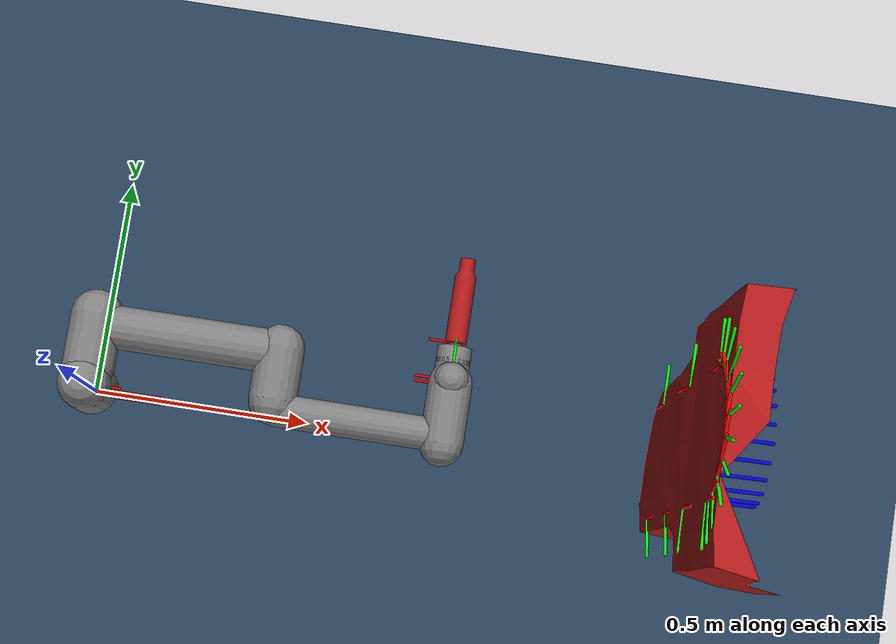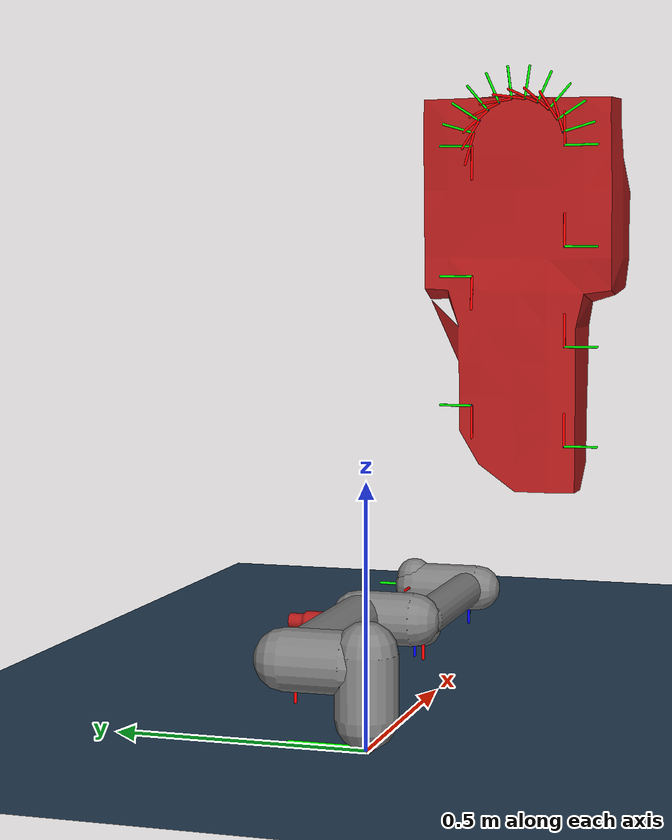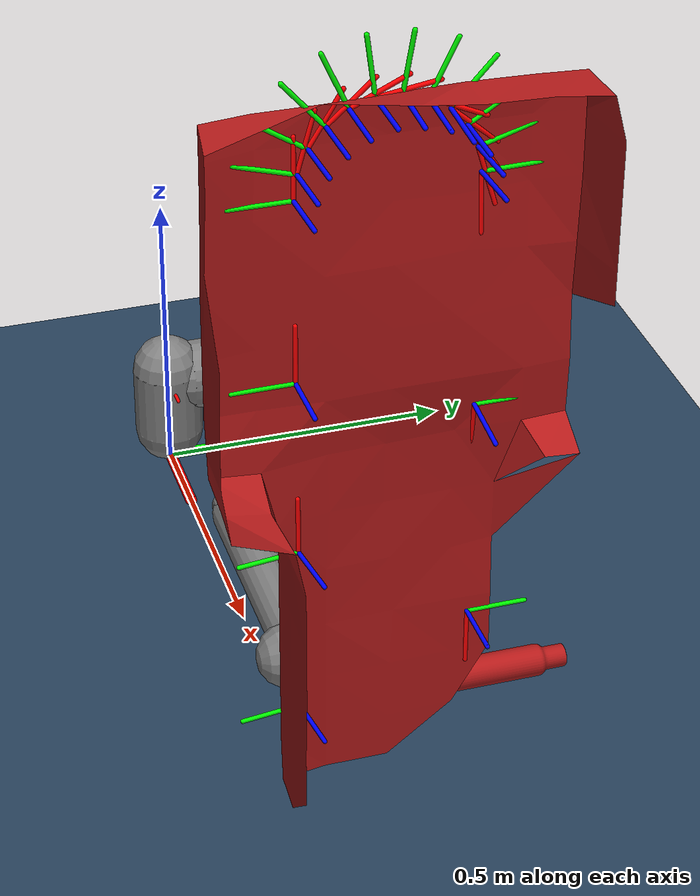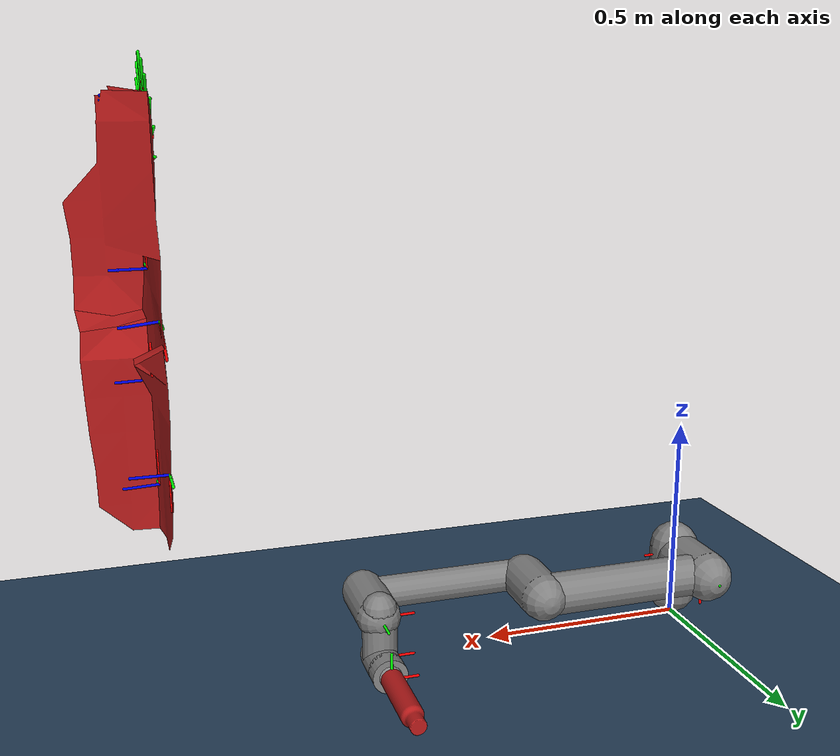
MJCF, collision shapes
<mujoco model="ur5e scene">
  <compiler angle="radian" meshdir="ur5e/assets" autolimits="true"/>
  <statistic center="0.3 0 0.4" extent="0.8"/>

  <visual>
    <headlight diffuse="0.6 0.6 0.6" ambient="0.1 0.1 0.1" specular="0 0 0"/>
    <rgba haze="0.15 0.25 0.35 1"/>
    <global azimuth="120" elevation="-20"/>
  </visual>

  <asset>
    <texture type="skybox" builtin="gradient" rgb1="0.3 0.5 0.7" rgb2="0 0 0" width="512" height="3072"/>
    <texture type="2d" name="groundplane" builtin="checker" mark="edge" rgb1="0.2 0.3 0.4" rgb2="0.1 0.2 0.3" markrgb="0.8 0.8 0.8" width="300" height="300"/>
    <material name="groundplane" texture="groundplane" texuniform="true" texrepeat="5 5" reflectance="0.2"/>
  <material class="ur5e" name="black" rgba="0.033 0.033 0.033 1"/>
    <material class="ur5e" name="jointgray" rgba="0.278 0.278 0.278 1"/>
    <material class="ur5e" name="linkgray" rgba="0.82 0.82 0.82 1"/>
    <material class="ur5e" name="urblue" rgba="0.49 0.678 0.8 1"/>

    <mesh file="base_0.obj"/>
    <mesh file="base_1.obj"/>
    <mesh file="shoulder_0.obj"/>
    <mesh file="shoulder_1.obj"/>
    <mesh file="shoulder_2.obj"/>
    <mesh file="upperarm_0.obj"/>
    <mesh file="upperarm_1.obj"/>
    <mesh file="upperarm_2.obj"/>
    <mesh file="upperarm_3.obj"/>
    <mesh file="forearm_0.obj"/>
    <mesh file="forearm_1.obj"/>
    <mesh file="forearm_2.obj"/>
    <mesh file="forearm_3.obj"/>
    <mesh file="wrist1_0.obj"/>
    <mesh file="wrist1_1.obj"/>
    <mesh file="wrist1_2.obj"/>
    <mesh file="wrist2_0.obj"/>
    <mesh file="wrist2_1.obj"/>
    <mesh file="wrist2_2.obj"/>
    <mesh file="wrist3.obj"/>
  <mesh name="tool_mesh" file="painting_gun.obj"/>
    <mesh name="painting_gun_collision_mesh" file="painting_gun.obj"/>
  <mesh name="reconstructed_mesh" file="reconstructed.obj"/>
    <mesh name="reconstructed_collision_mesh" file="reconstructed.obj"/>
  </asset>

  <worldbody>
    <light pos="0 0 1.5" dir="0 0 -1" directional="true"/>
    <geom name="floor" size="0 0 0.05" type="plane" pos="0.0 0.0 0.0" material="groundplane"/>
    <!-- Definition of the world frame -->
    <body name="world_frame" pos="0.0 0.0 0.0">
        <geom name="world_x_axis" type="capsule" fromto="0 0 0 0.15 0 0" size="0.01" rgba="1 0 0 1" contype="0" conaffinity="0"/>
        <geom name="world_y_axis" type="capsule" fromto="0 0 0 0 0.15 0" size="0.01" rgba="0 1 0 1" contype="0" conaffinity="0"/>
        <geom name="world_z_axis" type="capsule" fromto="0 0 0 0 0 0.15" size="0.01" rgba="0 0 1 1" contype="0" conaffinity="0"/>
    </body>

    <!-- Optimization search space -->

  <light name="spotlight" mode="targetbodycom" target="wrist_2_link" pos="0 -1 2"/>

    <body name="base" pos="0 0 0.0" quat="1 0 0 0" childclass="ur5e">
      <inertial mass="4.0" pos="0 0 0" diaginertia="0.00443333156 0.00443333156 0.0072"/>
      <geom type="capsule" fromto="0 0 0 0.08 0 0" rgba="1 0 0 1" size="0.003" contype="0" conaffinity="0"/>
      <geom type="capsule" fromto="0 0 0 0 0.08 0" rgba="0 1 0 1" size="0.003" contype="0" conaffinity="0"/>
      <geom type="capsule" fromto="0 0 0 0 0 0.08" rgba="0 0 1 1" size="0.003" contype="0" conaffinity="0"/>
      <geom mesh="base_0" material="black" class="visual"/>
      <geom mesh="base_1" material="jointgray" class="visual"/>

      <!-- COM marker -->
      <geom name="base_com" type="sphere" pos="0.0 0.0 0.0" size="0.01" rgba="1 0 0 1" group="1" contype="0" conaffinity="0"/>

      <body name="shoulder_link" pos="0 0 0.163">
        <inertial mass="3.761" pos="0 0.00193 -0.02561" diaginertia="0.0067 0.0064 0.00666"/>
        <geom type="capsule" fromto="0 0 0 0.08 0 0" rgba="1 0 0 1" size="0.003" contype="0" conaffinity="0"/>
        <geom type="capsule" fromto="0 0 0 0 0.08 0" rgba="0 1 0 1" size="0.003" contype="0" conaffinity="0"/>
        <geom type="capsule" fromto="0 0 0 0 0 0.08" rgba="0 0 1 1" size="0.003" contype="0" conaffinity="0"/>
        <joint name="shoulder_pan_joint" class="size3" axis="0 0 1"/>
        <geom mesh="shoulder_0" material="urblue" class="visual"/>
        <geom mesh="shoulder_1" material="black" class="visual"/>
        <geom mesh="shoulder_2" material="jointgray" class="visual"/>
        <geom name="shoulder_collision" class="collision" size="0.06 0.06" pos="0 0 -0.04"/>

        <!-- COM marker -->
        <geom name="shoulder_link_com" type="sphere" pos="0.0 0.00193 -0.02561" size="0.01" rgba="1 0 0 1" group="1" contype="0" conaffinity="0"/>

        <body name="upper_arm_link" pos="0 0.138 0" quat="1 0 1 0">
          <inertial mass="8.058" pos="0.0 -0.01464 0.2125" diaginertia="0.0149 0.3564 0.3553"/>
          <geom type="capsule" fromto="0 0 0 0.08 0 0" rgba="1 0 0 1" size="0.003" contype="0" conaffinity="0"/>
          <geom type="capsule" fromto="0 0 0 0 0.08 0" rgba="0 1 0 1" size="0.003" contype="0" conaffinity="0"/>
          <geom type="capsule" fromto="0 0 0 0 0 0.08" rgba="0 0 1 1" size="0.003" contype="0" conaffinity="0"/>
          <joint name="shoulder_lift_joint" class="size3"/>
          <geom mesh="upperarm_0" material="linkgray" class="visual"/>
          <geom mesh="upperarm_1" material="black" class="visual"/>
          <geom mesh="upperarm_2" material="jointgray" class="visual"/>
          <geom mesh="upperarm_3" material="urblue" class="visual"/>
          <geom name="upper_arm_collision_outer" class="collision" pos="0 -0.04 0" quat="1 1 0 0" size="0.06 0.06"/>
          <geom name="upper_arm_collision_inner" class="collision" size="0.05 0.2" pos="0 0 0.2"/>

          <!-- COM marker -->
          <geom name="upper_arm_com" type="sphere" pos="0.0 -0.01464 0.2125" size="0.01" rgba="1 0 0 1" group="1" contype="0" conaffinity="0"/>

          <body name="forearm_link" pos="0 -0.131 0.425">
            <inertial mass="2.846" pos="0.0 0.0155 0.1922" diaginertia="0.0025 0.0551 0.0546"/>
            <geom type="capsule" fromto="0 0 0 0.08 0 0" rgba="1 0 0 1" size="0.003" contype="0" conaffinity="0"/>
            <geom type="capsule" fromto="0 0 0 0 0.08 0" rgba="0 1 0 1" size="0.003" contype="0" conaffinity="0"/>
            <geom type="capsule" fromto="0 0 0 0 0 0.08" rgba="0 0 1 1" size="0.003" contype="0" conaffinity="0"/>
            <joint name="elbow_joint" class="size3_limited"/>
            <geom mesh="forearm_0" material="urblue" class="visual"/>
            <geom mesh="forearm_1" material="linkgray" class="visual"/>
            <geom mesh="forearm_2" material="black" class="visual"/>
            <geom mesh="forearm_3" material="jointgray" class="visual"/>
            <geom name="forearm_collision_outer" class="collision" pos="0 0.08 0" quat="1 1 0 0" size="0.055 0.06"/>
            <geom name="forearm_collision_inner" class="collision" size="0.038 0.19" pos="0 0 0.2"/>

            <!-- COM marker -->
            <geom name="forearm_com" type="sphere" pos="0.0 0.0155 0.1922" size="0.01" rgba="1 0 0 1" group="1" contype="0" conaffinity="0"/>

            <body name="wrist_1_link" pos="0 0 0.392" quat="1 0 1 0">
              <inertial mass="1.37" pos="0.0 0.11 0.03" diaginertia="0.0012 0.0012 0.0009"/>
              <geom type="capsule" fromto="0 0 0 0.08 0 0" rgba="1 0 0 1" size="0.003" contype="0" conaffinity="0"/>
              <geom type="capsule" fromto="0 0 0 0 0.08 0" rgba="0 1 0 1" size="0.003" contype="0" conaffinity="0"/>
              <geom type="capsule" fromto="0 0 0 0 0 0.08" rgba="0 0 1 1" size="0.003" contype="0" conaffinity="0"/>
              <joint name="wrist_1_joint" class="size1"/>
              <geom mesh="wrist1_0" material="black" class="visual"/>
              <geom mesh="wrist1_1" material="urblue" class="visual"/>
              <geom mesh="wrist1_2" material="jointgray" class="visual"/>
              <geom name="wrist_1_collision" class="collision" pos="0 0.05 0" quat="1 1 0 0" size="0.05 0.07"/>

              <!-- COM marker -->
              <geom name="wrist_1_com" type="sphere" pos="0.0 0.11 0.03" size="0.01" rgba="1 0 0 1" group="1" contype="0" conaffinity="0"/>

              <body name="wrist_2_link" pos="0 0.127 0">
                <inertial mass="1.3" pos="0.0 0.02 0.09" diaginertia="0.0012 0.0012 0.0009"/>
                <geom type="capsule" fromto="0 0 0 0.08 0 0" rgba="1 0 0 1" size="0.003" contype="0" conaffinity="0"/>
                <geom type="capsule" fromto="0 0 0 0 0.08 0" rgba="0 1 0 1" size="0.003" contype="0" conaffinity="0"/>
                <geom type="capsule" fromto="0 0 0 0 0 0.08" rgba="0 0 1 1" size="0.003" contype="0" conaffinity="0"/>
                <joint name="wrist_2_joint" axis="0 0 1" class="size1"/>
                <geom mesh="wrist2_0" material="black" class="visual"/>
                <geom mesh="wrist2_1" material="urblue" class="visual"/>
                <geom mesh="wrist2_2" material="jointgray" class="visual"/>
                <geom name="wrist_2_collision_lower" class="collision" size="0.04 0.06" pos="0 0 0.04"/>
                <geom name="wrist_2_collision_upper" class="collision" pos="0 0.02 0.1" quat="1 1 0 0" size="0.04 0.04"/>

                <!-- COM marker -->
                <geom name="wrist_2_com" type="sphere" pos="0.0 0.02 0.09" size="0.01" rgba="1 0 0 1" group="1" contype="0" conaffinity="0"/>

                <body name="wrist_3_link" pos="0 0 0.1">
                  <inertial mass="0.365" pos="0.0 0.07 0.0" quat="1 0 0 1" diaginertia="0.001 0.001 0.001"/>
                  <geom type="capsule" fromto="0 0 0 0.08 0 0" rgba="1 0 0 1" size="0.003" contype="0" conaffinity="0"/>
                  <geom type="capsule" fromto="0 0 0 0 0.08 0" rgba="0 1 0 1" size="0.003" contype="0" conaffinity="0"/>
                  <geom type="capsule" fromto="0 0 0 0 0 0.08" rgba="0 0 1 1" size="0.003" contype="0" conaffinity="0"/>
                  <joint name="wrist_3_joint" class="size1"/>
                  <geom material="linkgray" mesh="wrist3" class="visual"/>
                  <geom name="wrist_3_collision" class="eef_collision" pos="0 0.07 0" quat="1 1 0 0" size="0.04 0.02"/>

                  <!-- COM marker -->
                  <geom name="wrist_3_com" type="sphere" pos="0.0 0.07 0.0" size="0.01" rgba="1 0 0 1" group="1" contype="0" conaffinity="0"/>

                  <site name="ee_site" pos="0 0.1 0" quat="0.7071 -0.7071 0 0"/>

                  <!-- Replace tool frames with Hande gripper -->
                  <body name="ee_frame_visual_only" pos="0 0.1 0" quat="0.7071 -0.7071 0 0">
                    <geom type="capsule" fromto="0 0 0 0.05 0 0" rgba="1 0 0 1" size="0.002"/>
                    <geom type="capsule" fromto="0 0 0 0 0.05 0" rgba="0 1 0 1" size="0.002"/>
                    <geom type="capsule" fromto="0 0 0 0 0 0.05" rgba="0 0 1 1" size="0.002"/>

                    <!-- 'Movable frame' inside the gripper fingers -->
                    <body name="tool_frame" pos="0 0 0.0" quat="1 0 0 0">
                      <site name="tool_site" pos="0 0.0 0.0" quat="1 0 0 0"/>
                      <geom type="capsule" fromto="0 0 0 0.06 0 0" rgba="1 0 0 1" size="0.003" contype="0" conaffinity="0"/>
                      <geom type="capsule" fromto="0 0 0 0 0.06 0" rgba="0 1 0 1" size="0.003" contype="0" conaffinity="0"/>
                      <geom type="capsule" fromto="0 0 0 0 0 0.06" rgba="0 0 1 1" size="0.003" contype="0" conaffinity="0"/>
                    </body>
                  <body name="tool_base" pos="0 0 0">
      <inertial mass="0.752" pos="0.0 0.0 0.01" diaginertia="0.0143 0.0143 0.0016"/>
      <geom type="mesh" mesh="tool_mesh" rgba="0.6 0.6 0.6 1" contype="0" conaffinity="0" group="0"/>
      <!-- collision mesh -->
      <geom name="painting_gun_collision" type="mesh" mesh="painting_gun_collision_mesh" pos="0 0 0.0" rgba="0.7 0.1 0.1 0.3" contype="1" conaffinity="1" group="3"/>
      <!-- Marker (red sphere) to specify the origin -->
      <site name="mount_site" pos="0 0 0" size="0.005" rgba="1 0 0 1"/>
      <!-- Marker (green sphere) to specify the point of application of the weight -->
    </body>
  </body>
                </body>
              </body>
            </body>
          </body>
        </body>
      </body>
    </body>
  <body name="reconstructed" pos="0 0 0">

      <geom type="mesh" mesh="reconstructed_mesh" rgba="0.45 0.45 0.45 1" contype="0" conaffinity="0" group="0"/>

      <!-- Collisions-->
      <geom name="reconstructed_collision" type="mesh" mesh="reconstructed_collision_mesh" pos="0 0 0" rgba="0.7 0.1 0.1 0.3" contype="1" conaffinity="1" group="3"/>

      <!-- center of the piece -->
      <site name="mount_reconstructed_site" pos="0.0 0.0 0.0" size="0.005" rgba="1 0 0 1"/>

      <!-- Point 0 (waypoint_id: 0:0) -->
      <body name="point_0_traj" pos="1.2598389702191433 -0.12177624973664676 0.4399665670052016" quat="-0.04613876755134496 0.705589065223876 0.04630411468214134 0.7055998966332429">
        <geom type="capsule" fromto="0 0 0 0.08 0 0" rgba="1 0 0 1" size="0.003" contype="0" conaffinity="0"/>
        <geom type="capsule" fromto="0 0 0 0 0.08 0" rgba="0 1 0 1" size="0.003" contype="0" conaffinity="0"/>
        <geom type="capsule" fromto="0 0 0 0 0 0.08" rgba="0 0 1 1" size="0.003" contype="0" conaffinity="0"/>
      </body>

      <!-- Point 1 (waypoint_id: 0:1) -->
      <body name="point_1_traj" pos="1.259763160310089 -0.1217283074173864 0.6850079842804658" quat="-0.04668196970576362 0.7055047100423981 0.04757209379449118 0.7055641669645576">
        <geom type="capsule" fromto="0 0 0 0.08 0 0" rgba="1 0 0 1" size="0.003" contype="0" conaffinity="0"/>
        <geom type="capsule" fromto="0 0 0 0 0.08 0" rgba="0 1 0 1" size="0.003" contype="0" conaffinity="0"/>
        <geom type="capsule" fromto="0 0 0 0 0 0.08" rgba="0 0 1 1" size="0.003" contype="0" conaffinity="0"/>
      </body>

      <!-- Point 2 (waypoint_id: 0:2) -->
      <body name="point_2_traj" pos="1.2547960037013313 -0.12182916717120795 0.9300164291260314" quat="-0.00397026772020063 0.7110567723435863 0.003974395827144443 0.7031121586605941">
        <geom type="capsule" fromto="0 0 0 0.08 0 0" rgba="1 0 0 1" size="0.003" contype="0" conaffinity="0"/>
        <geom type="capsule" fromto="0 0 0 0 0.08 0" rgba="0 1 0 1" size="0.003" contype="0" conaffinity="0"/>
        <geom type="capsule" fromto="0 0 0 0 0 0.08" rgba="0 0 1 1" size="0.003" contype="0" conaffinity="0"/>
      </body>

      <!-- Point 3 (waypoint_id: 0:3) -->
      <body name="point_3_traj" pos="1.2530619008935922 -0.12183167259901001 1.1750466678957883" quat="-0.003220286608168738 0.6946829212760613 0.014887489021399898 0.7191548034409257">
        <geom type="capsule" fromto="0 0 0 0.08 0 0" rgba="1 0 0 1" size="0.003" contype="0" conaffinity="0"/>
        <geom type="capsule" fromto="0 0 0 0 0.08 0" rgba="0 1 0 1" size="0.003" contype="0" conaffinity="0"/>
        <geom type="capsule" fromto="0 0 0 0 0 0.08" rgba="0 0 1 1" size="0.003" contype="0" conaffinity="0"/>
      </body>

      <!-- Point 4 (waypoint_id: 0:4) -->
      <body name="point_4_traj" pos="1.2518535447323198 -0.11720248948405182 1.2074304228377515" quat="0.09380679926039524 0.6873930557166241 0.10708715450980319 0.7121961897567801">
        <geom type="capsule" fromto="0 0 0 0.08 0 0" rgba="1 0 0 1" size="0.003" contype="0" conaffinity="0"/>
        <geom type="capsule" fromto="0 0 0 0 0.08 0" rgba="0 1 0 1" size="0.003" contype="0" conaffinity="0"/>
        <geom type="capsule" fromto="0 0 0 0 0 0.08" rgba="0 0 1 1" size="0.003" contype="0" conaffinity="0"/>
      </body>

      <!-- Point 5 (waypoint_id: 0:5) -->
      <body name="point_5_traj" pos="1.250579077716589 -0.10363472293113687 1.2371895329969869" quat="0.19427477954965808 0.6651366299420344 0.2038875553284155 0.6915782228515349">
        <geom type="capsule" fromto="0 0 0 0.08 0 0" rgba="1 0 0 1" size="0.003" contype="0" conaffinity="0"/>
        <geom type="capsule" fromto="0 0 0 0 0.08 0" rgba="0 1 0 1" size="0.003" contype="0" conaffinity="0"/>
        <geom type="capsule" fromto="0 0 0 0 0 0.08" rgba="0 0 1 1" size="0.003" contype="0" conaffinity="0"/>
      </body>

      <!-- Point 6 (waypoint_id: 0:6) -->
      <body name="point_6_traj" pos="1.2499417164446514 -0.082209300807677 1.2619171366122646" quat="0.28436833850668014 0.6384818649975174 0.30316137677580185 0.6477412567959854">
        <geom type="capsule" fromto="0 0 0 0.08 0 0" rgba="1 0 0 1" size="0.003" contype="0" conaffinity="0"/>
        <geom type="capsule" fromto="0 0 0 0 0.08 0" rgba="0 1 0 1" size="0.003" contype="0" conaffinity="0"/>
        <geom type="capsule" fromto="0 0 0 0 0 0.08" rgba="0 0 1 1" size="0.003" contype="0" conaffinity="0"/>
      </body>

      <!-- Point 7 (waypoint_id: 0:7) -->
      <body name="point_7_traj" pos="1.2492818173015212 -0.05468362155685173 1.2796051555888968" quat="0.373712001040846 0.5967888674398254 0.39103470461403883 0.5926839358084109">
        <geom type="capsule" fromto="0 0 0 0.08 0 0" rgba="1 0 0 1" size="0.003" contype="0" conaffinity="0"/>
        <geom type="capsule" fromto="0 0 0 0 0.08 0" rgba="0 1 0 1" size="0.003" contype="0" conaffinity="0"/>
        <geom type="capsule" fromto="0 0 0 0 0 0.08" rgba="0 0 1 1" size="0.003" contype="0" conaffinity="0"/>
      </body>

      <!-- Point 8 (waypoint_id: 0:8) -->
      <body name="point_8_traj" pos="1.2489003220006754 -0.02328012328022956 1.2888222800838822" quat="0.45421848328420716 0.5350974524226776 0.47194894736979587 0.5334983382638567">
        <geom type="capsule" fromto="0 0 0 0.08 0 0" rgba="1 0 0 1" size="0.003" contype="0" conaffinity="0"/>
        <geom type="capsule" fromto="0 0 0 0 0.08 0" rgba="0 1 0 1" size="0.003" contype="0" conaffinity="0"/>
        <geom type="capsule" fromto="0 0 0 0 0 0.08" rgba="0 0 1 1" size="0.003" contype="0" conaffinity="0"/>
      </body>

      <!-- Point 9 (waypoint_id: 0:9) -->
      <body name="point_9_traj" pos="1.2483614813989392 0.009442872994473488 1.2888186477746328" quat="0.516745022652 0.47584169364247475 0.5519565870490325 0.4493252609958948">
        <geom type="capsule" fromto="0 0 0 0.08 0 0" rgba="1 0 0 1" size="0.003" contype="0" conaffinity="0"/>
        <geom type="capsule" fromto="0 0 0 0 0.08 0" rgba="0 1 0 1" size="0.003" contype="0" conaffinity="0"/>
        <geom type="capsule" fromto="0 0 0 0 0 0.08" rgba="0 0 1 1" size="0.003" contype="0" conaffinity="0"/>
      </body>

      <!-- Point 10 (waypoint_id: 0:10) -->
      <body name="point_10_traj" pos="1.2476536443505697 0.04083266226540186 1.2795941801211046" quat="0.5754893548082831 0.39235007769840685 0.6141195387914385 0.3711207500356063">
        <geom type="capsule" fromto="0 0 0 0.08 0 0" rgba="1 0 0 1" size="0.003" contype="0" conaffinity="0"/>
        <geom type="capsule" fromto="0 0 0 0 0.08 0" rgba="0 1 0 1" size="0.003" contype="0" conaffinity="0"/>
        <geom type="capsule" fromto="0 0 0 0 0 0.08" rgba="0 0 1 1" size="0.003" contype="0" conaffinity="0"/>
      </body>

      <!-- Point 11 (waypoint_id: 0:11) -->
      <body name="point_11_traj" pos="1.2464343888942682 0.06833406898763948 1.2618934938164896" quat="0.6225156505689229 0.30080013231600067 0.663777577049746 0.28529436272277736">
        <geom type="capsule" fromto="0 0 0 0.08 0 0" rgba="1 0 0 1" size="0.003" contype="0" conaffinity="0"/>
        <geom type="capsule" fromto="0 0 0 0 0.08 0" rgba="0 1 0 1" size="0.003" contype="0" conaffinity="0"/>
        <geom type="capsule" fromto="0 0 0 0 0 0.08" rgba="0 0 1 1" size="0.003" contype="0" conaffinity="0"/>
      </body>

      <!-- Point 12 (waypoint_id: 0:12) -->
      <body name="point_12_traj" pos="1.2450131780289422 0.08972550213381132 1.2371520134246834" quat="0.6800630610469541 0.19864591129370165 0.6769247389486986 0.1995668627928437">
        <geom type="capsule" fromto="0 0 0 0.08 0 0" rgba="1 0 0 1" size="0.003" contype="0" conaffinity="0"/>
        <geom type="capsule" fromto="0 0 0 0 0.08 0" rgba="0 1 0 1" size="0.003" contype="0" conaffinity="0"/>
        <geom type="capsule" fromto="0 0 0 0 0 0.08" rgba="0 0 1 1" size="0.003" contype="0" conaffinity="0"/>
      </body>

      <!-- Point 13 (waypoint_id: 0:13) -->
      <body name="point_13_traj" pos="1.2455176154238203 0.10333517722037279 1.2073877125175625" quat="0.709302432404664 0.08954491557152504 0.6901910012278887 0.11183983773307374">
        <geom type="capsule" fromto="0 0 0 0.08 0 0" rgba="1 0 0 1" size="0.003" contype="0" conaffinity="0"/>
        <geom type="capsule" fromto="0 0 0 0 0.08 0" rgba="0 1 0 1" size="0.003" contype="0" conaffinity="0"/>
        <geom type="capsule" fromto="0 0 0 0 0 0.08" rgba="0 0 1 1" size="0.003" contype="0" conaffinity="0"/>
      </body>

      <!-- Point 14 (waypoint_id: 0:14) -->
      <body name="point_14_traj" pos="1.2464019916872493 0.1080147397435726 1.1750017736362752" quat="0.7179187142204702 -0.004974954926763788 0.6959577285325192 0.014519286875054207">
        <geom type="capsule" fromto="0 0 0 0.08 0 0" rgba="1 0 0 1" size="0.003" contype="0" conaffinity="0"/>
        <geom type="capsule" fromto="0 0 0 0 0.08 0" rgba="0 1 0 1" size="0.003" contype="0" conaffinity="0"/>
        <geom type="capsule" fromto="0 0 0 0 0 0.08" rgba="0 0 1 1" size="0.003" contype="0" conaffinity="0"/>
      </body>

      <!-- Point 15 (waypoint_id: 0:15) -->
      <body name="point_15_traj" pos="1.2500635306306838 0.10806062144646351 0.8555715332046986" quat="0.6669217029486044 -1.5128274543391464e-05 0.7451278022755053 -1.3540461905113805e-05">
        <geom type="capsule" fromto="0 0 0 0.08 0 0" rgba="1 0 0 1" size="0.003" contype="0" conaffinity="0"/>
        <geom type="capsule" fromto="0 0 0 0 0.08 0" rgba="0 1 0 1" size="0.003" contype="0" conaffinity="0"/>
        <geom type="capsule" fromto="0 0 0 0 0 0.08" rgba="0 0 1 1" size="0.003" contype="0" conaffinity="0"/>
      </body>

      <!-- Point 16 (waypoint_id: 0:16) -->
      <body name="point_16_traj" pos="1.2498616250240235 0.10798897139509835 0.5361152494027287" quat="0.7081172490108711 -0.0015522251524811006 0.7060917737959523 0.0013997242719904835">
        <geom type="capsule" fromto="0 0 0 0.08 0 0" rgba="1 0 0 1" size="0.003" contype="0" conaffinity="0"/>
        <geom type="capsule" fromto="0 0 0 0 0.08 0" rgba="0 1 0 1" size="0.003" contype="0" conaffinity="0"/>
        <geom type="capsule" fromto="0 0 0 0 0 0.08" rgba="0 0 1 1" size="0.003" contype="0" conaffinity="0"/>
      </body>

    </body>
  </worldbody>

<default><default class="ur5e">
      <material specular="0.5" shininess="0.25"/>
      <joint axis="0 1 0" range="-6.28319 6.28319" armature="0.1"/>
      <general gaintype="fixed" biastype="affine" ctrlrange="-6.2831 6.2831" gainprm="2000" biasprm="0 -2000 -400" forcerange="-150 150"/>
      <default class="size3">
        <default class="size3_limited">
          <joint range="-6.28319 6.28319"/>
          <general ctrlrange="-6.28319 6.28319"/>
        </default>
      </default>
      <default class="size1">
        <general gainprm="500" biasprm="0 -500 -100" forcerange="-28 28"/>
      </default>
      <default class="visual">
        <geom type="mesh" contype="0" conaffinity="0" group="2"/>
      </default>
      <default class="collision">
        <geom type="capsule" group="3"/>
        <default class="eef_collision">
          <geom type="cylinder"/>
        </default>
      </default>
      <site size="0.001" rgba="0.5 0.5 0.5 0.3" group="4"/>
    </default>
  <geom condim="3" friction="1 0.5 0.01" solref="0.02 1" solimp="0.9 0.95 0.001"/>
  </default><actuator><motor joint="shoulder_pan_joint" gear="1"/>
    <motor joint="shoulder_lift_joint" gear="1"/>
    <motor joint="elbow_joint" gear="1"/>
    <motor joint="wrist_1_joint" gear="1"/>
    <motor joint="wrist_2_joint" gear="1"/>
    <motor joint="wrist_3_joint" gear="1"/>
  </actuator></mujoco>
